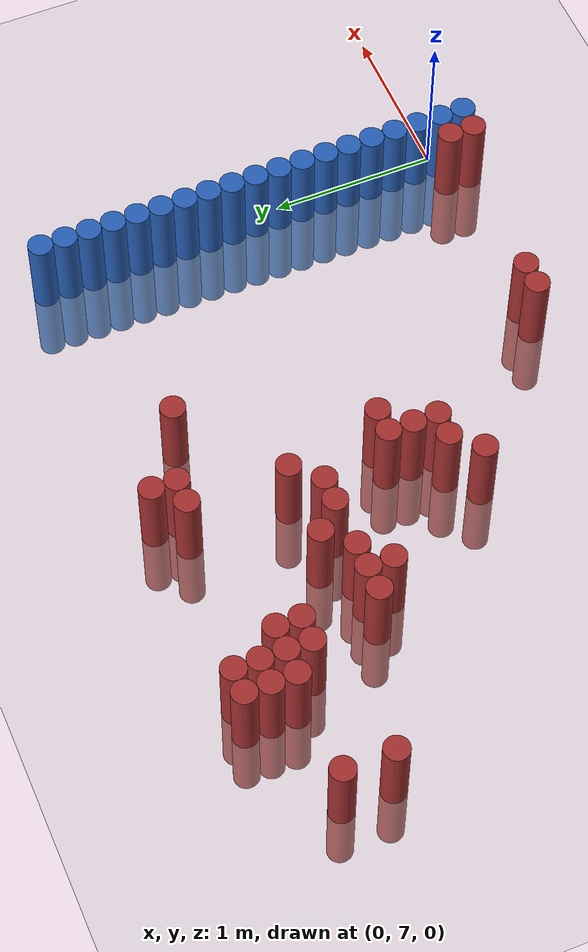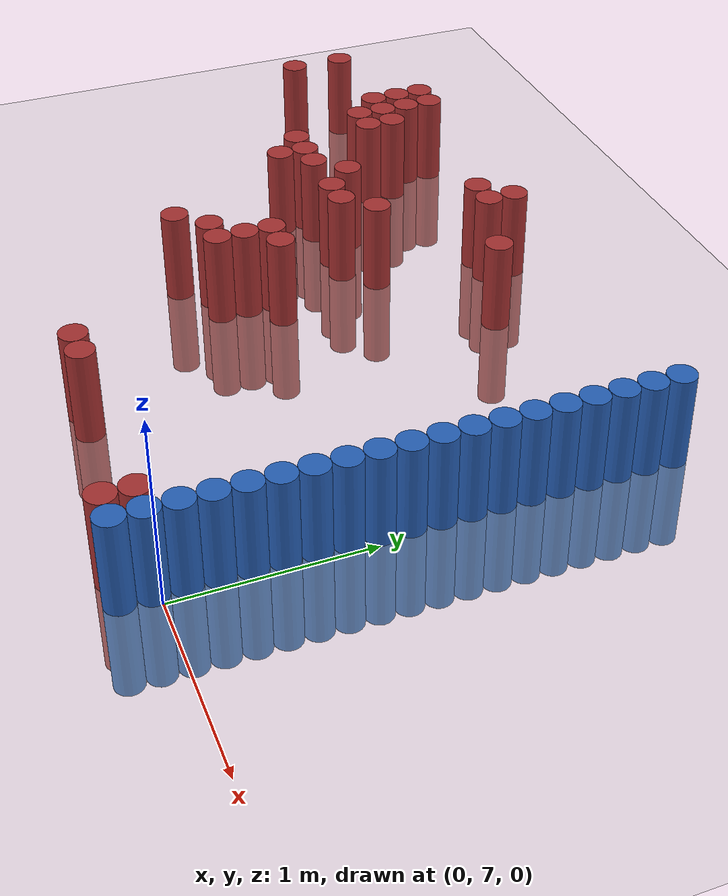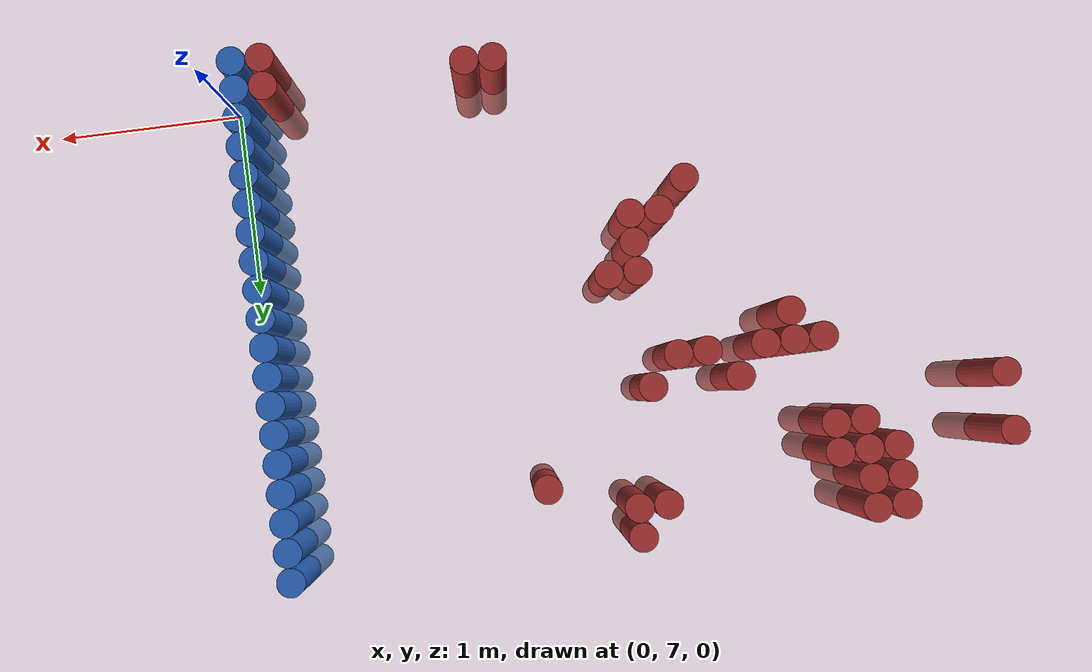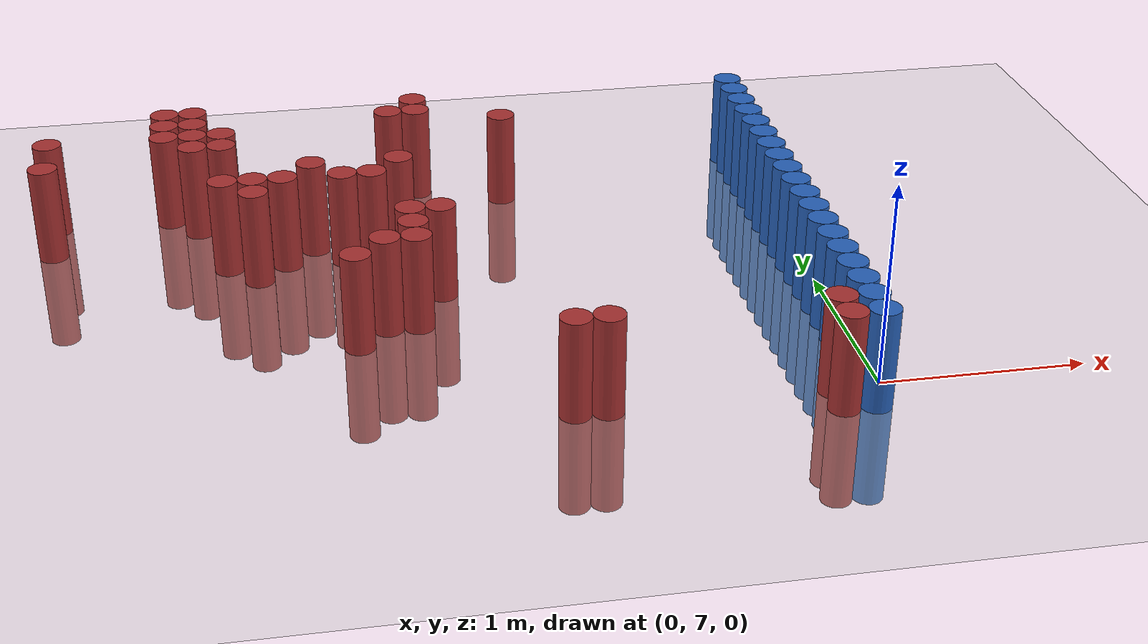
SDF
<sdf version="1.6">
 <world name="default">
  <model name="ground_plane">
   <static>1</static>
   <link name="link">
    <collision name="collision">
     <geometry><plane><normal>0 0 1</normal><size>100 100</size></plane></geometry>
     <surface><friction><ode><mu>100</mu><mu2>50</mu2></ode></friction></surface>
    </collision>
    <visual name="visual">
     <cast_shadows>0</cast_shadows>
     <geometry><plane><normal>0 0 1</normal><size>100 100</size></plane></geometry>
     <material>
      <script><uri>file://media/materials/scripts/gazebo.material</uri><name>Gazebo/Grey</name></script>
     </material>
    </visual>
   </link>
  </model>
  <model name="unit_cylinder_150">
   <static>1</static>
   <pose>-3.825000 8.925000 0.000000 0.000000 0.000000 0.000000</pose>
   <link name="link">
    <inertial>
     <mass>1</mass>
     <inertia><ixx>0.145833</ixx><ixy>0</ixy><ixz>0</ixz><iyy>0.145833</iyy><iyz>0</iyz><izz>0.125</izz></inertia>
    </inertial>
    <collision name="collision">
     <geometry><cylinder><radius>0.075000</radius><length>1</length></cylinder></geometry>
    </collision>
    <visual name="visual">
     <geometry><cylinder><radius>0.075000</radius><length>1</length></cylinder></geometry>
     <material>
      <ambient>0.648000 0.192000 0.192000 1</ambient>
      <diffuse>0.648000 0.192000 0.192000 1</diffuse>
     </material>
     <material>
      <script><name>Gazebo/Grey</name><uri>file://media/materials/scripts/gazebo.material</uri></script>
     </material>
    </visual>
   </link>
  </model>
  <model name="unit_cylinder_151">
   <static>1</static>
   <pose>-3.825000 9.225000 0.000000 0.000000 0.000000 0.000000</pose>
   <link name="link">
    <inertial>
     <mass>1</mass>
     <inertia><ixx>0.145833</ixx><ixy>0</ixy><ixz>0</ixz><iyy>0.145833</iyy><iyz>0</iyz><izz>0.125</izz></inertia>
    </inertial>
    <collision name="collision">
     <geometry><cylinder><radius>0.075000</radius><length>1</length></cylinder></geometry>
    </collision>
    <visual name="visual">
     <geometry><cylinder><radius>0.075000</radius><length>1</length></cylinder></geometry>
     <material>
      <ambient>0.648000 0.192000 0.192000 1</ambient>
      <diffuse>0.648000 0.192000 0.192000 1</diffuse>
     </material>
     <material>
      <script><name>Gazebo/Grey</name><uri>file://media/materials/scripts/gazebo.material</uri></script>
     </material>
    </visual>
   </link>
  </model>
  <model name="unit_cylinder_156">
   <static>1</static>
   <pose>-3.225000 9.225000 0.000000 0.000000 0.000000 0.000000</pose>
   <link name="link">
    <inertial>
     <mass>1</mass>
     <inertia><ixx>0.145833</ixx><ixy>0</ixy><ixz>0</ixz><iyy>0.145833</iyy><iyz>0</iyz><izz>0.125</izz></inertia>
    </inertial>
    <collision name="collision">
     <geometry><cylinder><radius>0.075000</radius><length>1</length></cylinder></geometry>
    </collision>
    <visual name="visual">
     <geometry><cylinder><radius>0.075000</radius><length>1</length></cylinder></geometry>
     <material>
      <ambient>0.648000 0.192000 0.192000 1</ambient>
      <diffuse>0.648000 0.192000 0.192000 1</diffuse>
     </material>
     <material>
      <script><name>Gazebo/Grey</name><uri>file://media/materials/scripts/gazebo.material</uri></script>
     </material>
    </visual>
   </link>
  </model>
  <model name="unit_cylinder_157">
   <static>1</static>
   <pose>-3.225000 9.375000 0.000000 0.000000 0.000000 0.000000</pose>
   <link name="link">
    <inertial>
     <mass>1</mass>
     <inertia><ixx>0.145833</ixx><ixy>0</ixy><ixz>0</ixz><iyy>0.145833</iyy><iyz>0</iyz><izz>0.125</izz></inertia>
    </inertial>
    <collision name="collision">
     <geometry><cylinder><radius>0.075000</radius><length>1</length></cylinder></geometry>
    </collision>
    <visual name="visual">
     <geometry><cylinder><radius>0.075000</radius><length>1</length></cylinder></geometry>
     <material>
      <ambient>0.648000 0.192000 0.192000 1</ambient>
      <diffuse>0.648000 0.192000 0.192000 1</diffuse>
     </material>
     <material>
      <script><name>Gazebo/Grey</name><uri>file://media/materials/scripts/gazebo.material</uri></script>
     </material>
    </visual>
   </link>
  </model>
  <model name="unit_cylinder_158">
   <static>1</static>
   <pose>-3.225000 9.525000 0.000000 0.000000 0.000000 0.000000</pose>
   <link name="link">
    <inertial>
     <mass>1</mass>
     <inertia><ixx>0.145833</ixx><ixy>0</ixy><ixz>0</ixz><iyy>0.145833</iyy><iyz>0</iyz><izz>0.125</izz></inertia>
    </inertial>
    <collision name="collision">
     <geometry><cylinder><radius>0.075000</radius><length>1</length></cylinder></geometry>
    </collision>
    <visual name="visual">
     <geometry><cylinder><radius>0.075000</radius><length>1</length></cylinder></geometry>
     <material>
      <ambient>0.648000 0.192000 0.192000 1</ambient>
      <diffuse>0.648000 0.192000 0.192000 1</diffuse>
     </material>
     <material>
      <script><name>Gazebo/Grey</name><uri>file://media/materials/scripts/gazebo.material</uri></script>
     </material>
    </visual>
   </link>
  </model>
  <model name="unit_cylinder_160">
   <static>1</static>
   <pose>-3.075000 9.075000 0.000000 0.000000 0.000000 0.000000</pose>
   <link name="link">
    <inertial>
     <mass>1</mass>
     <inertia><ixx>0.145833</ixx><ixy>0</ixy><ixz>0</ixz><iyy>0.145833</iyy><iyz>0</iyz><izz>0.125</izz></inertia>
    </inertial>
    <collision name="collision">
     <geometry><cylinder><radius>0.075000</radius><length>1</length></cylinder></geometry>
    </collision>
    <visual name="visual">
     <geometry><cylinder><radius>0.075000</radius><length>1</length></cylinder></geometry>
     <material>
      <ambient>0.648000 0.192000 0.192000 1</ambient>
      <diffuse>0.648000 0.192000 0.192000 1</diffuse>
     </material>
     <material>
      <script><name>Gazebo/Grey</name><uri>file://media/materials/scripts/gazebo.material</uri></script>
     </material>
    </visual>
   </link>
  </model>
  <model name="unit_cylinder_161">
   <static>1</static>
   <pose>-3.075000 9.225000 0.000000 0.000000 0.000000 0.000000</pose>
   <link name="link">
    <inertial>
     <mass>1</mass>
     <inertia><ixx>0.145833</ixx><ixy>0</ixy><ixz>0</ixz><iyy>0.145833</iyy><iyz>0</iyz><izz>0.125</izz></inertia>
    </inertial>
    <collision name="collision">
     <geometry><cylinder><radius>0.075000</radius><length>1</length></cylinder></geometry>
    </collision>
    <visual name="visual">
     <geometry><cylinder><radius>0.075000</radius><length>1</length></cylinder></geometry>
     <material>
      <ambient>0.648000 0.192000 0.192000 1</ambient>
      <diffuse>0.648000 0.192000 0.192000 1</diffuse>
     </material>
     <material>
      <script><name>Gazebo/Grey</name><uri>file://media/materials/scripts/gazebo.material</uri></script>
     </material>
    </visual>
   </link>
  </model>
  <model name="unit_cylinder_162">
   <static>1</static>
   <pose>-3.075000 9.375000 0.000000 0.000000 0.000000 0.000000</pose>
   <link name="link">
    <inertial>
     <mass>1</mass>
     <inertia><ixx>0.145833</ixx><ixy>0</ixy><ixz>0</ixz><iyy>0.145833</iyy><iyz>0</iyz><izz>0.125</izz></inertia>
    </inertial>
    <collision name="collision">
     <geometry><cylinder><radius>0.075000</radius><length>1</length></cylinder></geometry>
    </collision>
    <visual name="visual">
     <geometry><cylinder><radius>0.075000</radius><length>1</length></cylinder></geometry>
     <material>
      <ambient>0.648000 0.192000 0.192000 1</ambient>
      <diffuse>0.648000 0.192000 0.192000 1</diffuse>
     </material>
     <material>
      <script><name>Gazebo/Grey</name><uri>file://media/materials/scripts/gazebo.material</uri></script>
     </material>
    </visual>
   </link>
  </model>
  <model name="unit_cylinder_163">
   <static>1</static>
   <pose>-3.075000 9.525000 0.000000 0.000000 0.000000 0.000000</pose>
   <link name="link">
    <inertial>
     <mass>1</mass>
     <inertia><ixx>0.145833</ixx><ixy>0</ixy><ixz>0</ixz><iyy>0.145833</iyy><iyz>0</iyz><izz>0.125</izz></inertia>
    </inertial>
    <collision name="collision">
     <geometry><cylinder><radius>0.075000</radius><length>1</length></cylinder></geometry>
    </collision>
    <visual name="visual">
     <geometry><cylinder><radius>0.075000</radius><length>1</length></cylinder></geometry>
     <material>
      <ambient>0.648000 0.192000 0.192000 1</ambient>
      <diffuse>0.648000 0.192000 0.192000 1</diffuse>
     </material>
     <material>
      <script><name>Gazebo/Grey</name><uri>file://media/materials/scripts/gazebo.material</uri></script>
     </material>
    </visual>
   </link>
  </model>
  <model name="unit_cylinder_165">
   <static>1</static>
   <pose>-2.925000 8.625000 0.000000 0.000000 0.000000 0.000000</pose>
   <link name="link">
    <inertial>
     <mass>1</mass>
     <inertia><ixx>0.145833</ixx><ixy>0</ixy><ixz>0</ixz><iyy>0.145833</iyy><iyz>0</iyz><izz>0.125</izz></inertia>
    </inertial>
    <collision name="collision">
     <geometry><cylinder><radius>0.075000</radius><length>1</length></cylinder></geometry>
    </collision>
    <visual name="visual">
     <geometry><cylinder><radius>0.075000</radius><length>1</length></cylinder></geometry>
     <material>
      <ambient>0.648000 0.192000 0.192000 1</ambient>
      <diffuse>0.648000 0.192000 0.192000 1</diffuse>
     </material>
     <material>
      <script><name>Gazebo/Grey</name><uri>file://media/materials/scripts/gazebo.material</uri></script>
     </material>
    </visual>
   </link>
  </model>
  <model name="unit_cylinder_166">
   <static>1</static>
   <pose>-2.925000 9.075000 0.000000 0.000000 0.000000 0.000000</pose>
   <link name="link">
    <inertial>
     <mass>1</mass>
     <inertia><ixx>0.145833</ixx><ixy>0</ixy><ixz>0</ixz><iyy>0.145833</iyy><iyz>0</iyz><izz>0.125</izz></inertia>
    </inertial>
    <collision name="collision">
     <geometry><cylinder><radius>0.075000</radius><length>1</length></cylinder></geometry>
    </collision>
    <visual name="visual">
     <geometry><cylinder><radius>0.075000</radius><length>1</length></cylinder></geometry>
     <material>
      <ambient>0.648000 0.192000 0.192000 1</ambient>
      <diffuse>0.648000 0.192000 0.192000 1</diffuse>
     </material>
     <material>
      <script><name>Gazebo/Grey</name><uri>file://media/materials/scripts/gazebo.material</uri></script>
     </material>
    </visual>
   </link>
  </model>
  <model name="unit_cylinder_167">
   <static>1</static>
   <pose>-2.925000 9.225000 0.000000 0.000000 0.000000 0.000000</pose>
   <link name="link">
    <inertial>
     <mass>1</mass>
     <inertia><ixx>0.145833</ixx><ixy>0</ixy><ixz>0</ixz><iyy>0.145833</iyy><iyz>0</iyz><izz>0.125</izz></inertia>
    </inertial>
    <collision name="collision">
     <geometry><cylinder><radius>0.075000</radius><length>1</length></cylinder></geometry>
    </collision>
    <visual name="visual">
     <geometry><cylinder><radius>0.075000</radius><length>1</length></cylinder></geometry>
     <material>
      <ambient>0.648000 0.192000 0.192000 1</ambient>
      <diffuse>0.648000 0.192000 0.192000 1</diffuse>
     </material>
     <material>
      <script><name>Gazebo/Grey</name><uri>file://media/materials/scripts/gazebo.material</uri></script>
     </material>
    </visual>
   </link>
  </model>
  <model name="unit_cylinder_168">
   <static>1</static>
   <pose>-2.775000 8.475000 0.000000 0.000000 0.000000 0.000000</pose>
   <link name="link">
    <inertial>
     <mass>1</mass>
     <inertia><ixx>0.145833</ixx><ixy>0</ixy><ixz>0</ixz><iyy>0.145833</iyy><iyz>0</iyz><izz>0.125</izz></inertia>
    </inertial>
    <collision name="collision">
     <geometry><cylinder><radius>0.075000</radius><length>1</length></cylinder></geometry>
    </collision>
    <visual name="visual">
     <geometry><cylinder><radius>0.075000</radius><length>1</length></cylinder></geometry>
     <material>
      <ambient>0.648000 0.192000 0.192000 1</ambient>
      <diffuse>0.648000 0.192000 0.192000 1</diffuse>
     </material>
     <material>
      <script><name>Gazebo/Grey</name><uri>file://media/materials/scripts/gazebo.material</uri></script>
     </material>
    </visual>
   </link>
  </model>
  <model name="unit_cylinder_169">
   <static>1</static>
   <pose>-2.775000 8.625000 0.000000 0.000000 0.000000 0.000000</pose>
   <link name="link">
    <inertial>
     <mass>1</mass>
     <inertia><ixx>0.145833</ixx><ixy>0</ixy><ixz>0</ixz><iyy>0.145833</iyy><iyz>0</iyz><izz>0.125</izz></inertia>
    </inertial>
    <collision name="collision">
     <geometry><cylinder><radius>0.075000</radius><length>1</length></cylinder></geometry>
    </collision>
    <visual name="visual">
     <geometry><cylinder><radius>0.075000</radius><length>1</length></cylinder></geometry>
     <material>
      <ambient>0.648000 0.192000 0.192000 1</ambient>
      <diffuse>0.648000 0.192000 0.192000 1</diffuse>
     </material>
     <material>
      <script><name>Gazebo/Grey</name><uri>file://media/materials/scripts/gazebo.material</uri></script>
     </material>
    </visual>
   </link>
  </model>
  <model name="unit_cylinder_171">
   <static>1</static>
   <pose>-2.625000 8.625000 0.000000 0.000000 0.000000 0.000000</pose>
   <link name="link">
    <inertial>
     <mass>1</mass>
     <inertia><ixx>0.145833</ixx><ixy>0</ixy><ixz>0</ixz><iyy>0.145833</iyy><iyz>0</iyz><izz>0.125</izz></inertia>
    </inertial>
    <collision name="collision">
     <geometry><cylinder><radius>0.075000</radius><length>1</length></cylinder></geometry>
    </collision>
    <visual name="visual">
     <geometry><cylinder><radius>0.075000</radius><length>1</length></cylinder></geometry>
     <material>
      <ambient>0.648000 0.192000 0.192000 1</ambient>
      <diffuse>0.648000 0.192000 0.192000 1</diffuse>
     </material>
     <material>
      <script><name>Gazebo/Grey</name><uri>file://media/materials/scripts/gazebo.material</uri></script>
     </material>
    </visual>
   </link>
  </model>
  <model name="unit_cylinder_174">
   <static>1</static>
   <pose>-2.475000 8.775000 0.000000 0.000000 0.000000 0.000000</pose>
   <link name="link">
    <inertial>
     <mass>1</mass>
     <inertia><ixx>0.145833</ixx><ixy>0</ixy><ixz>0</ixz><iyy>0.145833</iyy><iyz>0</iyz><izz>0.125</izz></inertia>
    </inertial>
    <collision name="collision">
     <geometry><cylinder><radius>0.075000</radius><length>1</length></cylinder></geometry>
    </collision>
    <visual name="visual">
     <geometry><cylinder><radius>0.075000</radius><length>1</length></cylinder></geometry>
     <material>
      <ambient>0.648000 0.192000 0.192000 1</ambient>
      <diffuse>0.648000 0.192000 0.192000 1</diffuse>
     </material>
     <material>
      <script><name>Gazebo/Grey</name><uri>file://media/materials/scripts/gazebo.material</uri></script>
     </material>
    </visual>
   </link>
  </model>
  <model name="unit_cylinder_175">
   <static>1</static>
   <pose>-2.325000 7.725000 0.000000 0.000000 0.000000 0.000000</pose>
   <link name="link">
    <inertial>
     <mass>1</mass>
     <inertia><ixx>0.145833</ixx><ixy>0</ixy><ixz>0</ixz><iyy>0.145833</iyy><iyz>0</iyz><izz>0.125</izz></inertia>
    </inertial>
    <collision name="collision">
     <geometry><cylinder><radius>0.075000</radius><length>1</length></cylinder></geometry>
    </collision>
    <visual name="visual">
     <geometry><cylinder><radius>0.075000</radius><length>1</length></cylinder></geometry>
     <material>
      <ambient>0.648000 0.192000 0.192000 1</ambient>
      <diffuse>0.648000 0.192000 0.192000 1</diffuse>
     </material>
     <material>
      <script><name>Gazebo/Grey</name><uri>file://media/materials/scripts/gazebo.material</uri></script>
     </material>
    </visual>
   </link>
  </model>
  <model name="unit_cylinder_176">
   <static>1</static>
   <pose>-2.325000 8.625000 0.000000 0.000000 0.000000 0.000000</pose>
   <link name="link">
    <inertial>
     <mass>1</mass>
     <inertia><ixx>0.145833</ixx><ixy>0</ixy><ixz>0</ixz><iyy>0.145833</iyy><iyz>0</iyz><izz>0.125</izz></inertia>
    </inertial>
    <collision name="collision">
     <geometry><cylinder><radius>0.075000</radius><length>1</length></cylinder></geometry>
    </collision>
    <visual name="visual">
     <geometry><cylinder><radius>0.075000</radius><length>1</length></cylinder></geometry>
     <material>
      <ambient>0.648000 0.192000 0.192000 1</ambient>
      <diffuse>0.648000 0.192000 0.192000 1</diffuse>
     </material>
     <material>
      <script><name>Gazebo/Grey</name><uri>file://media/materials/scripts/gazebo.material</uri></script>
     </material>
    </visual>
   </link>
  </model>
  <model name="unit_cylinder_177">
   <static>1</static>
   <pose>-2.175000 7.875000 0.000000 0.000000 0.000000 0.000000</pose>
   <link name="link">
    <inertial>
     <mass>1</mass>
     <inertia><ixx>0.145833</ixx><ixy>0</ixy><ixz>0</ixz><iyy>0.145833</iyy><iyz>0</iyz><izz>0.125</izz></inertia>
    </inertial>
    <collision name="collision">
     <geometry><cylinder><radius>0.075000</radius><length>1</length></cylinder></geometry>
    </collision>
    <visual name="visual">
     <geometry><cylinder><radius>0.075000</radius><length>1</length></cylinder></geometry>
     <material>
      <ambient>0.648000 0.192000 0.192000 1</ambient>
      <diffuse>0.648000 0.192000 0.192000 1</diffuse>
     </material>
     <material>
      <script><name>Gazebo/Grey</name><uri>file://media/materials/scripts/gazebo.material</uri></script>
     </material>
    </visual>
   </link>
  </model>
  <model name="unit_cylinder_178">
   <static>1</static>
   <pose>-2.175000 8.625000 0.000000 0.000000 0.000000 0.000000</pose>
   <link name="link">
    <inertial>
     <mass>1</mass>
     <inertia><ixx>0.145833</ixx><ixy>0</ixy><ixz>0</ixz><iyy>0.145833</iyy><iyz>0</iyz><izz>0.125</izz></inertia>
    </inertial>
    <collision name="collision">
     <geometry><cylinder><radius>0.075000</radius><length>1</length></cylinder></geometry>
    </collision>
    <visual name="visual">
     <geometry><cylinder><radius>0.075000</radius><length>1</length></cylinder></geometry>
     <material>
      <ambient>0.648000 0.192000 0.192000 1</ambient>
      <diffuse>0.648000 0.192000 0.192000 1</diffuse>
     </material>
     <material>
      <script><name>Gazebo/Grey</name><uri>file://media/materials/scripts/gazebo.material</uri></script>
     </material>
    </visual>
   </link>
  </model>
  <model name="unit_cylinder_179">
   <static>1</static>
   <pose>-2.025000 7.875000 0.000000 0.000000 0.000000 0.000000</pose>
   <link name="link">
    <inertial>
     <mass>1</mass>
     <inertia><ixx>0.145833</ixx><ixy>0</ixy><ixz>0</ixz><iyy>0.145833</iyy><iyz>0</iyz><izz>0.125</izz></inertia>
    </inertial>
    <collision name="collision">
     <geometry><cylinder><radius>0.075000</radius><length>1</length></cylinder></geometry>
    </collision>
    <visual name="visual">
     <geometry><cylinder><radius>0.075000</radius><length>1</length></cylinder></geometry>
     <material>
      <ambient>0.648000 0.192000 0.192000 1</ambient>
      <diffuse>0.648000 0.192000 0.192000 1</diffuse>
     </material>
     <material>
      <script><name>Gazebo/Grey</name><uri>file://media/materials/scripts/gazebo.material</uri></script>
     </material>
    </visual>
   </link>
  </model>
  <model name="unit_cylinder_180">
   <static>1</static>
   <pose>-2.025000 8.025000 0.000000 0.000000 0.000000 0.000000</pose>
   <link name="link">
    <inertial>
     <mass>1</mass>
     <inertia><ixx>0.145833</ixx><ixy>0</ixy><ixz>0</ixz><iyy>0.145833</iyy><iyz>0</iyz><izz>0.125</izz></inertia>
    </inertial>
    <collision name="collision">
     <geometry><cylinder><radius>0.075000</radius><length>1</length></cylinder></geometry>
    </collision>
    <visual name="visual">
     <geometry><cylinder><radius>0.075000</radius><length>1</length></cylinder></geometry>
     <material>
      <ambient>0.648000 0.192000 0.192000 1</ambient>
      <diffuse>0.648000 0.192000 0.192000 1</diffuse>
     </material>
     <material>
      <script><name>Gazebo/Grey</name><uri>file://media/materials/scripts/gazebo.material</uri></script>
     </material>
    </visual>
   </link>
  </model>
  <model name="unit_cylinder_181">
   <static>1</static>
   <pose>-2.025000 8.175000 0.000000 0.000000 0.000000 0.000000</pose>
   <link name="link">
    <inertial>
     <mass>1</mass>
     <inertia><ixx>0.145833</ixx><ixy>0</ixy><ixz>0</ixz><iyy>0.145833</iyy><iyz>0</iyz><izz>0.125</izz></inertia>
    </inertial>
    <collision name="collision">
     <geometry><cylinder><radius>0.075000</radius><length>1</length></cylinder></geometry>
    </collision>
    <visual name="visual">
     <geometry><cylinder><radius>0.075000</radius><length>1</length></cylinder></geometry>
     <material>
      <ambient>0.648000 0.192000 0.192000 1</ambient>
      <diffuse>0.648000 0.192000 0.192000 1</diffuse>
     </material>
     <material>
      <script><name>Gazebo/Grey</name><uri>file://media/materials/scripts/gazebo.material</uri></script>
     </material>
    </visual>
   </link>
  </model>
  <model name="unit_cylinder_182">
   <static>1</static>
   <pose>-2.025000 8.775000 0.000000 0.000000 0.000000 0.000000</pose>
   <link name="link">
    <inertial>
     <mass>1</mass>
     <inertia><ixx>0.145833</ixx><ixy>0</ixy><ixz>0</ixz><iyy>0.145833</iyy><iyz>0</iyz><izz>0.125</izz></inertia>
    </inertial>
    <collision name="collision">
     <geometry><cylinder><radius>0.075000</radius><length>1</length></cylinder></geometry>
    </collision>
    <visual name="visual">
     <geometry><cylinder><radius>0.075000</radius><length>1</length></cylinder></geometry>
     <material>
      <ambient>0.648000 0.192000 0.192000 1</ambient>
      <diffuse>0.648000 0.192000 0.192000 1</diffuse>
     </material>
     <material>
      <script><name>Gazebo/Grey</name><uri>file://media/materials/scripts/gazebo.material</uri></script>
     </material>
    </visual>
   </link>
  </model>
  <model name="unit_cylinder_183">
   <static>1</static>
   <pose>-2.025000 9.375000 0.000000 0.000000 0.000000 0.000000</pose>
   <link name="link">
    <inertial>
     <mass>1</mass>
     <inertia><ixx>0.145833</ixx><ixy>0</ixy><ixz>0</ixz><iyy>0.145833</iyy><iyz>0</iyz><izz>0.125</izz></inertia>
    </inertial>
    <collision name="collision">
     <geometry><cylinder><radius>0.075000</radius><length>1</length></cylinder></geometry>
    </collision>
    <visual name="visual">
     <geometry><cylinder><radius>0.075000</radius><length>1</length></cylinder></geometry>
     <material>
      <ambient>0.648000 0.192000 0.192000 1</ambient>
      <diffuse>0.648000 0.192000 0.192000 1</diffuse>
     </material>
     <material>
      <script><name>Gazebo/Grey</name><uri>file://media/materials/scripts/gazebo.material</uri></script>
     </material>
    </visual>
   </link>
  </model>
  <model name="unit_cylinder_184">
   <static>1</static>
   <pose>-1.875000 8.175000 0.000000 0.000000 0.000000 0.000000</pose>
   <link name="link">
    <inertial>
     <mass>1</mass>
     <inertia><ixx>0.145833</ixx><ixy>0</ixy><ixz>0</ixz><iyy>0.145833</iyy><iyz>0</iyz><izz>0.125</izz></inertia>
    </inertial>
    <collision name="collision">
     <geometry><cylinder><radius>0.075000</radius><length>1</length></cylinder></geometry>
    </collision>
    <visual name="visual">
     <geometry><cylinder><radius>0.075000</radius><length>1</length></cylinder></geometry>
     <material>
      <ambient>0.648000 0.192000 0.192000 1</ambient>
      <diffuse>0.648000 0.192000 0.192000 1</diffuse>
     </material>
     <material>
      <script><name>Gazebo/Grey</name><uri>file://media/materials/scripts/gazebo.material</uri></script>
     </material>
    </visual>
   </link>
  </model>
  <model name="unit_cylinder_185">
   <static>1</static>
   <pose>-1.875000 9.375000 0.000000 0.000000 0.000000 0.000000</pose>
   <link name="link">
    <inertial>
     <mass>1</mass>
     <inertia><ixx>0.145833</ixx><ixy>0</ixy><ixz>0</ixz><iyy>0.145833</iyy><iyz>0</iyz><izz>0.125</izz></inertia>
    </inertial>
    <collision name="collision">
     <geometry><cylinder><radius>0.075000</radius><length>1</length></cylinder></geometry>
    </collision>
    <visual name="visual">
     <geometry><cylinder><radius>0.075000</radius><length>1</length></cylinder></geometry>
     <material>
      <ambient>0.648000 0.192000 0.192000 1</ambient>
      <diffuse>0.648000 0.192000 0.192000 1</diffuse>
     </material>
     <material>
      <script><name>Gazebo/Grey</name><uri>file://media/materials/scripts/gazebo.material</uri></script>
     </material>
    </visual>
   </link>
  </model>
  <model name="unit_cylinder_186">
   <static>1</static>
   <pose>-1.875000 9.525000 0.000000 0.000000 0.000000 0.000000</pose>
   <link name="link">
    <inertial>
     <mass>1</mass>
     <inertia><ixx>0.145833</ixx><ixy>0</ixy><ixz>0</ixz><iyy>0.145833</iyy><iyz>0</iyz><izz>0.125</izz></inertia>
    </inertial>
    <collision name="collision">
     <geometry><cylinder><radius>0.075000</radius><length>1</length></cylinder></geometry>
    </collision>
    <visual name="visual">
     <geometry><cylinder><radius>0.075000</radius><length>1</length></cylinder></geometry>
     <material>
      <ambient>0.648000 0.192000 0.192000 1</ambient>
      <diffuse>0.648000 0.192000 0.192000 1</diffuse>
     </material>
     <material>
      <script><name>Gazebo/Grey</name><uri>file://media/materials/scripts/gazebo.material</uri></script>
     </material>
    </visual>
   </link>
  </model>
  <model name="unit_cylinder_193">
   <static>1</static>
   <pose>-1.425000 6.975000 0.000000 0.000000 0.000000 0.000000</pose>
   <link name="link">
    <inertial>
     <mass>1</mass>
     <inertia><ixx>0.145833</ixx><ixy>0</ixy><ixz>0</ixz><iyy>0.145833</iyy><iyz>0</iyz><izz>0.125</izz></inertia>
    </inertial>
    <collision name="collision">
     <geometry><cylinder><radius>0.075000</radius><length>1</length></cylinder></geometry>
    </collision>
    <visual name="visual">
     <geometry><cylinder><radius>0.075000</radius><length>1</length></cylinder></geometry>
     <material>
      <ambient>0.648000 0.192000 0.192000 1</ambient>
      <diffuse>0.648000 0.192000 0.192000 1</diffuse>
     </material>
     <material>
      <script><name>Gazebo/Grey</name><uri>file://media/materials/scripts/gazebo.material</uri></script>
     </material>
    </visual>
   </link>
  </model>
  <model name="unit_cylinder_194">
   <static>1</static>
   <pose>-1.425000 9.225000 0.000000 0.000000 0.000000 0.000000</pose>
   <link name="link">
    <inertial>
     <mass>1</mass>
     <inertia><ixx>0.145833</ixx><ixy>0</ixy><ixz>0</ixz><iyy>0.145833</iyy><iyz>0</iyz><izz>0.125</izz></inertia>
    </inertial>
    <collision name="collision">
     <geometry><cylinder><radius>0.075000</radius><length>1</length></cylinder></geometry>
    </collision>
    <visual name="visual">
     <geometry><cylinder><radius>0.075000</radius><length>1</length></cylinder></geometry>
     <material>
      <ambient>0.648000 0.192000 0.192000 1</ambient>
      <diffuse>0.648000 0.192000 0.192000 1</diffuse>
     </material>
     <material>
      <script><name>Gazebo/Grey</name><uri>file://media/materials/scripts/gazebo.material</uri></script>
     </material>
    </visual>
   </link>
  </model>
  <model name="unit_cylinder_199">
   <static>1</static>
   <pose>-1.275000 6.975000 0.000000 0.000000 0.000000 0.000000</pose>
   <link name="link">
    <inertial>
     <mass>1</mass>
     <inertia><ixx>0.145833</ixx><ixy>0</ixy><ixz>0</ixz><iyy>0.145833</iyy><iyz>0</iyz><izz>0.125</izz></inertia>
    </inertial>
    <collision name="collision">
     <geometry><cylinder><radius>0.075000</radius><length>1</length></cylinder></geometry>
    </collision>
    <visual name="visual">
     <geometry><cylinder><radius>0.075000</radius><length>1</length></cylinder></geometry>
     <material>
      <ambient>0.648000 0.192000 0.192000 1</ambient>
      <diffuse>0.648000 0.192000 0.192000 1</diffuse>
     </material>
     <material>
      <script><name>Gazebo/Grey</name><uri>file://media/materials/scripts/gazebo.material</uri></script>
     </material>
    </visual>
   </link>
  </model>
  <model name="unit_cylinder_229">
   <static>1</static>
   <pose>-0.225000 6.825000 0.000000 0.000000 0.000000 0.000000</pose>
   <link name="link">
    <inertial>
     <mass>1</mass>
     <inertia><ixx>0.145833</ixx><ixy>0</ixy><ixz>0</ixz><iyy>0.145833</iyy><iyz>0</iyz><izz>0.125</izz></inertia>
    </inertial>
    <collision name="collision">
     <geometry><cylinder><radius>0.075000</radius><length>1</length></cylinder></geometry>
    </collision>
    <visual name="visual">
     <geometry><cylinder><radius>0.075000</radius><length>1</length></cylinder></geometry>
     <material>
      <ambient>0.648000 0.192000 0.192000 1</ambient>
      <diffuse>0.648000 0.192000 0.192000 1</diffuse>
     </material>
     <material>
      <script><name>Gazebo/Grey</name><uri>file://media/materials/scripts/gazebo.material</uri></script>
     </material>
    </visual>
   </link>
  </model>
  <model name="unit_cylinder_230">
   <static>1</static>
   <pose>-0.225000 6.975000 0.000000 0.000000 0.000000 0.000000</pose>
   <link name="link">
    <inertial>
     <mass>1</mass>
     <inertia><ixx>0.145833</ixx><ixy>0</ixy><ixz>0</ixz><iyy>0.145833</iyy><iyz>0</iyz><izz>0.125</izz></inertia>
    </inertial>
    <collision name="collision">
     <geometry><cylinder><radius>0.075000</radius><length>1</length></cylinder></geometry>
    </collision>
    <visual name="visual">
     <geometry><cylinder><radius>0.075000</radius><length>1</length></cylinder></geometry>
     <material>
      <ambient>0.648000 0.192000 0.192000 1</ambient>
      <diffuse>0.648000 0.192000 0.192000 1</diffuse>
     </material>
     <material>
      <script><name>Gazebo/Grey</name><uri>file://media/materials/scripts/gazebo.material</uri></script>
     </material>
    </visual>
   </link>
  </model>
  <model name="unit_cylinder_242">
   <static>1</static>
   <pose>-0.075000 6.825000 0.000000 0.000000 0.000000 0.000000</pose>
   <link name="link">
    <inertial>
     <mass>1</mass>
     <inertia><ixx>0.145833</ixx><ixy>0</ixy><ixz>0</ixz><iyy>0.145833</iyy><iyz>0</iyz><izz>0.125</izz></inertia>
    </inertial>
    <collision name="collision">
     <geometry><cylinder><radius>0.075000</radius><length>1</length></cylinder></geometry>
    </collision>
    <visual name="visual">
     <geometry><cylinder><radius>0.075000</radius><length>1</length></cylinder></geometry>
     <material>
      <ambient>0.152000 0.379000 0.720000 1</ambient>
      <diffuse>0.152000 0.379000 0.720000 1</diffuse>
     </material>
     <material>
      <script><name>Gazebo/Grey</name><uri>file://media/materials/scripts/gazebo.material</uri></script>
     </material>
    </visual>
   </link>
  </model>
  <model name="unit_cylinder_243">
   <static>1</static>
   <pose>-0.075000 6.975000 0.000000 0.000000 0.000000 0.000000</pose>
   <link name="link">
    <inertial>
     <mass>1</mass>
     <inertia><ixx>0.145833</ixx><ixy>0</ixy><ixz>0</ixz><iyy>0.145833</iyy><iyz>0</iyz><izz>0.125</izz></inertia>
    </inertial>
    <collision name="collision">
     <geometry><cylinder><radius>0.075000</radius><length>1</length></cylinder></geometry>
    </collision>
    <visual name="visual">
     <geometry><cylinder><radius>0.075000</radius><length>1</length></cylinder></geometry>
     <material>
      <ambient>0.152000 0.379000 0.720000 1</ambient>
      <diffuse>0.152000 0.379000 0.720000 1</diffuse>
     </material>
     <material>
      <script><name>Gazebo/Grey</name><uri>file://media/materials/scripts/gazebo.material</uri></script>
     </material>
    </visual>
   </link>
  </model>
  <model name="unit_cylinder_244">
   <static>1</static>
   <pose>-0.075000 7.125000 0.000000 0.000000 0.000000 0.000000</pose>
   <link name="link">
    <inertial>
     <mass>1</mass>
     <inertia><ixx>0.145833</ixx><ixy>0</ixy><ixz>0</ixz><iyy>0.145833</iyy><iyz>0</iyz><izz>0.125</izz></inertia>
    </inertial>
    <collision name="collision">
     <geometry><cylinder><radius>0.075000</radius><length>1</length></cylinder></geometry>
    </collision>
    <visual name="visual">
     <geometry><cylinder><radius>0.075000</radius><length>1</length></cylinder></geometry>
     <material>
      <ambient>0.152000 0.379000 0.720000 1</ambient>
      <diffuse>0.152000 0.379000 0.720000 1</diffuse>
     </material>
     <material>
      <script><name>Gazebo/Grey</name><uri>file://media/materials/scripts/gazebo.material</uri></script>
     </material>
    </visual>
   </link>
  </model>
  <model name="unit_cylinder_245">
   <static>1</static>
   <pose>-0.075000 7.275000 0.000000 0.000000 0.000000 0.000000</pose>
   <link name="link">
    <inertial>
     <mass>1</mass>
     <inertia><ixx>0.145833</ixx><ixy>0</ixy><ixz>0</ixz><iyy>0.145833</iyy><iyz>0</iyz><izz>0.125</izz></inertia>
    </inertial>
    <collision name="collision">
     <geometry><cylinder><radius>0.075000</radius><length>1</length></cylinder></geometry>
    </collision>
    <visual name="visual">
     <geometry><cylinder><radius>0.075000</radius><length>1</length></cylinder></geometry>
     <material>
      <ambient>0.152000 0.379000 0.720000 1</ambient>
      <diffuse>0.152000 0.379000 0.720000 1</diffuse>
     </material>
     <material>
      <script><name>Gazebo/Grey</name><uri>file://media/materials/scripts/gazebo.material</uri></script>
     </material>
    </visual>
   </link>
  </model>
  <model name="unit_cylinder_246">
   <static>1</static>
   <pose>-0.075000 7.425000 0.000000 0.000000 0.000000 0.000000</pose>
   <link name="link">
    <inertial>
     <mass>1</mass>
     <inertia><ixx>0.145833</ixx><ixy>0</ixy><ixz>0</ixz><iyy>0.145833</iyy><iyz>0</iyz><izz>0.125</izz></inertia>
    </inertial>
    <collision name="collision">
     <geometry><cylinder><radius>0.075000</radius><length>1</length></cylinder></geometry>
    </collision>
    <visual name="visual">
     <geometry><cylinder><radius>0.075000</radius><length>1</length></cylinder></geometry>
     <material>
      <ambient>0.152000 0.379000 0.720000 1</ambient>
      <diffuse>0.152000 0.379000 0.720000 1</diffuse>
     </material>
     <material>
      <script><name>Gazebo/Grey</name><uri>file://media/materials/scripts/gazebo.material</uri></script>
     </material>
    </visual>
   </link>
  </model>
  <model name="unit_cylinder_247">
   <static>1</static>
   <pose>-0.075000 7.575000 0.000000 0.000000 0.000000 0.000000</pose>
   <link name="link">
    <inertial>
     <mass>1</mass>
     <inertia><ixx>0.145833</ixx><ixy>0</ixy><ixz>0</ixz><iyy>0.145833</iyy><iyz>0</iyz><izz>0.125</izz></inertia>
    </inertial>
    <collision name="collision">
     <geometry><cylinder><radius>0.075000</radius><length>1</length></cylinder></geometry>
    </collision>
    <visual name="visual">
     <geometry><cylinder><radius>0.075000</radius><length>1</length></cylinder></geometry>
     <material>
      <ambient>0.152000 0.379000 0.720000 1</ambient>
      <diffuse>0.152000 0.379000 0.720000 1</diffuse>
     </material>
     <material>
      <script><name>Gazebo/Grey</name><uri>file://media/materials/scripts/gazebo.material</uri></script>
     </material>
    </visual>
   </link>
  </model>
  <model name="unit_cylinder_248">
   <static>1</static>
   <pose>-0.075000 7.725000 0.000000 0.000000 0.000000 0.000000</pose>
   <link name="link">
    <inertial>
     <mass>1</mass>
     <inertia><ixx>0.145833</ixx><ixy>0</ixy><ixz>0</ixz><iyy>0.145833</iyy><iyz>0</iyz><izz>0.125</izz></inertia>
    </inertial>
    <collision name="collision">
     <geometry><cylinder><radius>0.075000</radius><length>1</length></cylinder></geometry>
    </collision>
    <visual name="visual">
     <geometry><cylinder><radius>0.075000</radius><length>1</length></cylinder></geometry>
     <material>
      <ambient>0.152000 0.379000 0.720000 1</ambient>
      <diffuse>0.152000 0.379000 0.720000 1</diffuse>
     </material>
     <material>
      <script><name>Gazebo/Grey</name><uri>file://media/materials/scripts/gazebo.material</uri></script>
     </material>
    </visual>
   </link>
  </model>
  <model name="unit_cylinder_249">
   <static>1</static>
   <pose>-0.075000 7.875000 0.000000 0.000000 0.000000 0.000000</pose>
   <link name="link">
    <inertial>
     <mass>1</mass>
     <inertia><ixx>0.145833</ixx><ixy>0</ixy><ixz>0</ixz><iyy>0.145833</iyy><iyz>0</iyz><izz>0.125</izz></inertia>
    </inertial>
    <collision name="collision">
     <geometry><cylinder><radius>0.075000</radius><length>1</length></cylinder></geometry>
    </collision>
    <visual name="visual">
     <geometry><cylinder><radius>0.075000</radius><length>1</length></cylinder></geometry>
     <material>
      <ambient>0.152000 0.379000 0.720000 1</ambient>
      <diffuse>0.152000 0.379000 0.720000 1</diffuse>
     </material>
     <material>
      <script><name>Gazebo/Grey</name><uri>file://media/materials/scripts/gazebo.material</uri></script>
     </material>
    </visual>
   </link>
  </model>
  <model name="unit_cylinder_250">
   <static>1</static>
   <pose>-0.075000 8.025000 0.000000 0.000000 0.000000 0.000000</pose>
   <link name="link">
    <inertial>
     <mass>1</mass>
     <inertia><ixx>0.145833</ixx><ixy>0</ixy><ixz>0</ixz><iyy>0.145833</iyy><iyz>0</iyz><izz>0.125</izz></inertia>
    </inertial>
    <collision name="collision">
     <geometry><cylinder><radius>0.075000</radius><length>1</length></cylinder></geometry>
    </collision>
    <visual name="visual">
     <geometry><cylinder><radius>0.075000</radius><length>1</length></cylinder></geometry>
     <material>
      <ambient>0.152000 0.379000 0.720000 1</ambient>
      <diffuse>0.152000 0.379000 0.720000 1</diffuse>
     </material>
     <material>
      <script><name>Gazebo/Grey</name><uri>file://media/materials/scripts/gazebo.material</uri></script>
     </material>
    </visual>
   </link>
  </model>
  <model name="unit_cylinder_251">
   <static>1</static>
   <pose>-0.075000 8.175000 0.000000 0.000000 0.000000 0.000000</pose>
   <link name="link">
    <inertial>
     <mass>1</mass>
     <inertia><ixx>0.145833</ixx><ixy>0</ixy><ixz>0</ixz><iyy>0.145833</iyy><iyz>0</iyz><izz>0.125</izz></inertia>
    </inertial>
    <collision name="collision">
     <geometry><cylinder><radius>0.075000</radius><length>1</length></cylinder></geometry>
    </collision>
    <visual name="visual">
     <geometry><cylinder><radius>0.075000</radius><length>1</length></cylinder></geometry>
     <material>
      <ambient>0.152000 0.379000 0.720000 1</ambient>
      <diffuse>0.152000 0.379000 0.720000 1</diffuse>
     </material>
     <material>
      <script><name>Gazebo/Grey</name><uri>file://media/materials/scripts/gazebo.material</uri></script>
     </material>
    </visual>
   </link>
  </model>
  <model name="unit_cylinder_252">
   <static>1</static>
   <pose>-0.075000 8.325000 0.000000 0.000000 0.000000 0.000000</pose>
   <link name="link">
    <inertial>
     <mass>1</mass>
     <inertia><ixx>0.145833</ixx><ixy>0</ixy><ixz>0</ixz><iyy>0.145833</iyy><iyz>0</iyz><izz>0.125</izz></inertia>
    </inertial>
    <collision name="collision">
     <geometry><cylinder><radius>0.075000</radius><length>1</length></cylinder></geometry>
    </collision>
    <visual name="visual">
     <geometry><cylinder><radius>0.075000</radius><length>1</length></cylinder></geometry>
     <material>
      <ambient>0.152000 0.379000 0.720000 1</ambient>
      <diffuse>0.152000 0.379000 0.720000 1</diffuse>
     </material>
     <material>
      <script><name>Gazebo/Grey</name><uri>file://media/materials/scripts/gazebo.material</uri></script>
     </material>
    </visual>
   </link>
  </model>
  <model name="unit_cylinder_253">
   <static>1</static>
   <pose>-0.075000 8.475000 0.000000 0.000000 0.000000 0.000000</pose>
   <link name="link">
    <inertial>
     <mass>1</mass>
     <inertia><ixx>0.145833</ixx><ixy>0</ixy><ixz>0</ixz><iyy>0.145833</iyy><iyz>0</iyz><izz>0.125</izz></inertia>
    </inertial>
    <collision name="collision">
     <geometry><cylinder><radius>0.075000</radius><length>1</length></cylinder></geometry>
    </collision>
    <visual name="visual">
     <geometry><cylinder><radius>0.075000</radius><length>1</length></cylinder></geometry>
     <material>
      <ambient>0.152000 0.379000 0.720000 1</ambient>
      <diffuse>0.152000 0.379000 0.720000 1</diffuse>
     </material>
     <material>
      <script><name>Gazebo/Grey</name><uri>file://media/materials/scripts/gazebo.material</uri></script>
     </material>
    </visual>
   </link>
  </model>
  <model name="unit_cylinder_254">
   <static>1</static>
   <pose>-0.075000 8.625000 0.000000 0.000000 0.000000 0.000000</pose>
   <link name="link">
    <inertial>
     <mass>1</mass>
     <inertia><ixx>0.145833</ixx><ixy>0</ixy><ixz>0</ixz><iyy>0.145833</iyy><iyz>0</iyz><izz>0.125</izz></inertia>
    </inertial>
    <collision name="collision">
     <geometry><cylinder><radius>0.075000</radius><length>1</length></cylinder></geometry>
    </collision>
    <visual name="visual">
     <geometry><cylinder><radius>0.075000</radius><length>1</length></cylinder></geometry>
     <material>
      <ambient>0.152000 0.379000 0.720000 1</ambient>
      <diffuse>0.152000 0.379000 0.720000 1</diffuse>
     </material>
     <material>
      <script><name>Gazebo/Grey</name><uri>file://media/materials/scripts/gazebo.material</uri></script>
     </material>
    </visual>
   </link>
  </model>
  <model name="unit_cylinder_255">
   <static>1</static>
   <pose>-0.075000 8.775000 0.000000 0.000000 0.000000 0.000000</pose>
   <link name="link">
    <inertial>
     <mass>1</mass>
     <inertia><ixx>0.145833</ixx><ixy>0</ixy><ixz>0</ixz><iyy>0.145833</iyy><iyz>0</iyz><izz>0.125</izz></inertia>
    </inertial>
    <collision name="collision">
     <geometry><cylinder><radius>0.075000</radius><length>1</length></cylinder></geometry>
    </collision>
    <visual name="visual">
     <geometry><cylinder><radius>0.075000</radius><length>1</length></cylinder></geometry>
     <material>
      <ambient>0.152000 0.379000 0.720000 1</ambient>
      <diffuse>0.152000 0.379000 0.720000 1</diffuse>
     </material>
     <material>
      <script><name>Gazebo/Grey</name><uri>file://media/materials/scripts/gazebo.material</uri></script>
     </material>
    </visual>
   </link>
  </model>
  <model name="unit_cylinder_256">
   <static>1</static>
   <pose>-0.075000 8.925000 0.000000 0.000000 0.000000 0.000000</pose>
   <link name="link">
    <inertial>
     <mass>1</mass>
     <inertia><ixx>0.145833</ixx><ixy>0</ixy><ixz>0</ixz><iyy>0.145833</iyy><iyz>0</iyz><izz>0.125</izz></inertia>
    </inertial>
    <collision name="collision">
     <geometry><cylinder><radius>0.075000</radius><length>1</length></cylinder></geometry>
    </collision>
    <visual name="visual">
     <geometry><cylinder><radius>0.075000</radius><length>1</length></cylinder></geometry>
     <material>
      <ambient>0.152000 0.379000 0.720000 1</ambient>
      <diffuse>0.152000 0.379000 0.720000 1</diffuse>
     </material>
     <material>
      <script><name>Gazebo/Grey</name><uri>file://media/materials/scripts/gazebo.material</uri></script>
     </material>
    </visual>
   </link>
  </model>
  <model name="unit_cylinder_257">
   <static>1</static>
   <pose>-0.075000 9.075000 0.000000 0.000000 0.000000 0.000000</pose>
   <link name="link">
    <inertial>
     <mass>1</mass>
     <inertia><ixx>0.145833</ixx><ixy>0</ixy><ixz>0</ixz><iyy>0.145833</iyy><iyz>0</iyz><izz>0.125</izz></inertia>
    </inertial>
    <collision name="collision">
     <geometry><cylinder><radius>0.075000</radius><length>1</length></cylinder></geometry>
    </collision>
    <visual name="visual">
     <geometry><cylinder><radius>0.075000</radius><length>1</length></cylinder></geometry>
     <material>
      <ambient>0.152000 0.379000 0.720000 1</ambient>
      <diffuse>0.152000 0.379000 0.720000 1</diffuse>
     </material>
     <material>
      <script><name>Gazebo/Grey</name><uri>file://media/materials/scripts/gazebo.material</uri></script>
     </material>
    </visual>
   </link>
  </model>
  <model name="unit_cylinder_258">
   <static>1</static>
   <pose>-0.075000 9.225000 0.000000 0.000000 0.000000 0.000000</pose>
   <link name="link">
    <inertial>
     <mass>1</mass>
     <inertia><ixx>0.145833</ixx><ixy>0</ixy><ixz>0</ixz><iyy>0.145833</iyy><iyz>0</iyz><izz>0.125</izz></inertia>
    </inertial>
    <collision name="collision">
     <geometry><cylinder><radius>0.075000</radius><length>1</length></cylinder></geometry>
    </collision>
    <visual name="visual">
     <geometry><cylinder><radius>0.075000</radius><length>1</length></cylinder></geometry>
     <material>
      <ambient>0.152000 0.379000 0.720000 1</ambient>
      <diffuse>0.152000 0.379000 0.720000 1</diffuse>
     </material>
     <material>
      <script><name>Gazebo/Grey</name><uri>file://media/materials/scripts/gazebo.material</uri></script>
     </material>
    </visual>
   </link>
  </model>
  <model name="unit_cylinder_259">
   <static>1</static>
   <pose>-0.075000 9.375000 0.000000 0.000000 0.000000 0.000000</pose>
   <link name="link">
    <inertial>
     <mass>1</mass>
     <inertia><ixx>0.145833</ixx><ixy>0</ixy><ixz>0</ixz><iyy>0.145833</iyy><iyz>0</iyz><izz>0.125</izz></inertia>
    </inertial>
    <collision name="collision">
     <geometry><cylinder><radius>0.075000</radius><length>1</length></cylinder></geometry>
    </collision>
    <visual name="visual">
     <geometry><cylinder><radius>0.075000</radius><length>1</length></cylinder></geometry>
     <material>
      <ambient>0.152000 0.379000 0.720000 1</ambient>
      <diffuse>0.152000 0.379000 0.720000 1</diffuse>
     </material>
     <material>
      <script><name>Gazebo/Grey</name><uri>file://media/materials/scripts/gazebo.material</uri></script>
     </material>
    </visual>
   </link>
  </model>
  <model name="unit_cylinder_260">
   <static>1</static>
   <pose>-0.075000 9.525000 0.000000 0.000000 0.000000 0.000000</pose>
   <link name="link">
    <inertial>
     <mass>1</mass>
     <inertia><ixx>0.145833</ixx><ixy>0</ixy><ixz>0</ixz><iyy>0.145833</iyy><iyz>0</iyz><izz>0.125</izz></inertia>
    </inertial>
    <collision name="collision">
     <geometry><cylinder><radius>0.075000</radius><length>1</length></cylinder></geometry>
    </collision>
    <visual name="visual">
     <geometry><cylinder><radius>0.075000</radius><length>1</length></cylinder></geometry>
     <material>
      <ambient>0.152000 0.379000 0.720000 1</ambient>
      <diffuse>0.152000 0.379000 0.720000 1</diffuse>
     </material>
     <material>
      <script><name>Gazebo/Grey</name><uri>file://media/materials/scripts/gazebo.material</uri></script>
     </material>
    </visual>
   </link>
  </model>
 </world>
</sdf>
